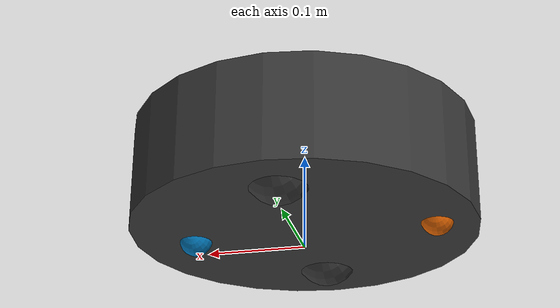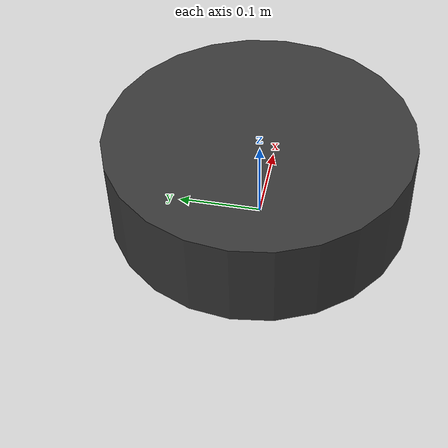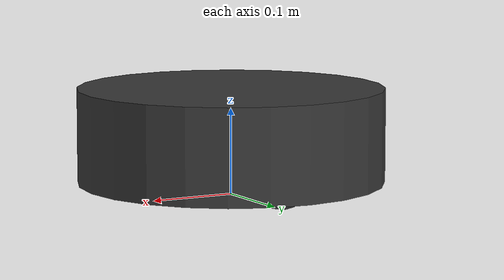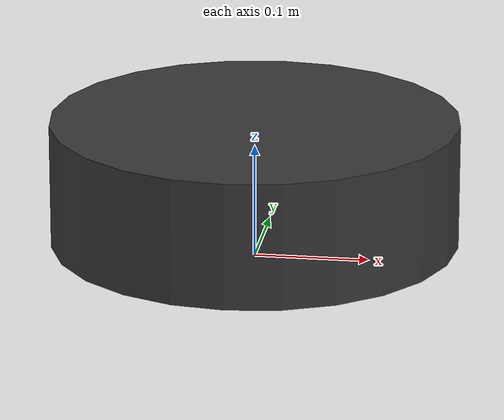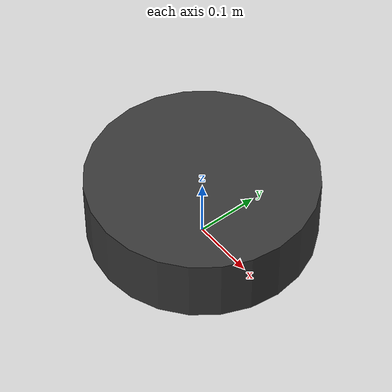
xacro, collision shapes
<?xml version="1.0" ?>

<robot name="kobuki" xmlns:xacro="http://ros.org/wiki/xacro">

  <xacro:arg name="robot_namespace" default="/" />

  <!-- Include Parameters -->
  <xacro:include filename="$(find kobuki_pkg)/urdf/kobuki_parameters.urdf.xacro"/>

  <!-- Kobuki Model-->

  <link name="base_footprint"/>

  <joint name="base_joint" type="fixed">
    <origin xyz="0 0 0.0102" rpy="0 0 0" />
    <parent link="base_footprint"/>
    <child link="base_link" />
  </joint>

  <!-- Base Link -->

  <link_base_kobuki
    name="base_link"
    visual_rpy="0 0 0"
    visual_xyz="0.001 0 0.05199"
    inertial_rpy="0 0 0"
    inertial_xyz="0.01 0 0"
    collision_rpy="0 0 0"
    collision_xyz="0.0 0 0.05949"
    cylinder_length="0.10938"
    cylinder_radius="0.178"
    meshfile="package://kobuki_pkg/meshes/main_body.dae"
    mass="2.4"
    ixx="0.021403" ixy="0.0" ixz="0.0"
    iyy="0.021403" iyz="0.0" izz="0.038020"
  />

  <!-- Left Traction Wheel -->

  <wheel_kobuki
    name="wheel_left"

    joint_origin_xyz="0.00 ${0.23/2} 0.0250"
    joint_origin_rpy="${-M_PI/2} 0 0"
    joint_axis_xyz="0 0 1"

    visual_rpy="0 0 0"
    visual_xyz="0 0 0"
    inertial_rpy="0 0 0"
    inertial_xyz="0 0 0"
    collision_rpy="0 0 0"
    collision_xyz="0 0 0"
    cylinder_length="0.0206"
    cylinder_radius="0.035"
    meshfile="package://kobuki_pkg/meshes/wheel.dae"
    mass="0.01"
    ixx="0.000892" ixy="0.0" ixz="0.0"
    iyy="0.000892" iyz="0.0" izz="0.001584"
  />

  <!-- Right Traction Wheel -->

   <wheel_kobuki
    name="wheel_right"

    joint_origin_xyz="0.00 -${0.23/2} 0.0250"
    joint_origin_rpy="${-M_PI/2} 0 0"
    joint_axis_xyz="0 0 1"

    visual_rpy="0 0 0"
    visual_xyz="0 0 0"
    inertial_rpy="0 0 0"
    inertial_xyz="0 0 0"
    collision_rpy="0 0 0"
    collision_xyz="0 0 0"
    cylinder_length="0.0206"
    cylinder_radius="0.035"
    meshfile="package://kobuki_pkg/meshes/wheel.dae"
    mass="0.01"
    ixx="0.001" ixy="0.0" ixz="0.0"
    iyy="0.001" iyz="0.0" izz="0.001"
  />

  <!-- Front Castor Wheel -->

  <castor_wheel_kobuki
    name="caster_front"

    joint_origin_xyz="0.115 0.0 0.007"
    joint_origin_rpy="${-M_PI/2} 0 0"

    inertial_rpy="0 0 0"
    inertial_xyz="0 0 0"
    collision_rpy="0 0 0"
    collision_xyz="0 0 0"
    cylinder_length="0.0176"
    cylinder_radius="0.017"
    mass="0.01"
    ixx="0.001" ixy="0.0" ixz="0.0"
    iyy="0.001" iyz="0.0" izz="0.001"
  />

  <!-- Back Castor Wheel -->

  <castor_wheel_kobuki
    name="caster_back"

    joint_origin_xyz="-0.135 0.0 0.009"
    joint_origin_rpy="${-M_PI/2} 0 0"

    inertial_rpy="0 0 0"
    inertial_xyz="0 0 0"
    collision_rpy="0 0 0"
    collision_xyz="0 0 0"
    cylinder_length="0.0176"
    cylinder_radius="0.017"
    mass="0.01"
    ixx="0.001" ixy="0.0" ixz="0.0"
    iyy="0.001" iyz="0.0" izz="0.001"
  />

  <!-- Gazebo Plugins -->
  <gazebo>
    <plugin name="gazebo_ros_control" filename="libgazebo_ros_control.so">
      <robotNamespace>$(arg robot_namespace)</robotNamespace>
      <legacyModeNS>true</legacyModeNS>
    </plugin>
  </gazebo>

</robot>

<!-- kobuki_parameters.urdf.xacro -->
<robot name="kobuki_parameters" xmlns:xacro="http://ros.org/wiki/xacro">

    <xacro:property name="M_PI" value="3.1415926535897931" />

    <material name="Black">
        <color rgba="0.22 0.22 0.22 1.0"/>
    </material>

    <!-- Base Link Macro -->
    <xacro:macro
    name="link_base_kobuki"
    params="name visual_rpy visual_xyz inertial_xyz inertial_rpy
            collision_xyz collision_rpy meshfile
            mass ixx ixy ixz iyy iyz izz cylinder_length cylinder_radius">

        <link name="${name}">
            <visual>
                <origin rpy="${visual_rpy}" xyz="${visual_xyz}" />
                <geometry>
                    <mesh filename="${meshfile}"/>
                </geometry>
                <material name="Black"/>
            </visual>

            <inertial>
                <mass value="${mass}" />
                <origin rpy="${inertial_rpy}" xyz="${inertial_xyz}" />
                <inertia ixx="${ixx}" ixy="${ixy}" ixz="${ixz}" iyy="${iyy}" iyz="${iyz}" izz="${izz}" />
            </inertial>

            <collision>
                <origin rpy="${collision_rpy}" xyz="${collision_xyz}" />
                <geometry>
                    <cylinder length="${cylinder_length}" radius="${cylinder_radius}"/>
                </geometry>
            </collision>
        </link>
    </xacro:macro>

    <!-- Traction Wheels Link Macro -->
    <xacro:macro
    name="wheel_kobuki"
    params="name
            joint_origin_xyz joint_origin_rpy joint_axis_xyz
            visual_rpy visual_xyz inertial_xyz inertial_rpy
            collision_xyz collision_rpy meshfile
            mass ixx ixy ixz iyy iyz izz cylinder_length cylinder_radius">

        <joint name="${name}_joint" type="continuous">
            <parent link="base_link"/>
            <child link="${name}_link"/>
            <origin xyz="${joint_origin_xyz}" rpy="${joint_origin_rpy}"/>
            <axis xyz="${joint_axis_xyz}"/>
        </joint>

        <link name="${name}_link">
            <visual>
                <origin rpy="${visual_rpy}" xyz="${visual_xyz}" />
                <geometry>
                    <mesh filename="${meshfile}"/>
                </geometry>
                <material name="Black"/>
            </visual>

            <inertial>
                <mass value="${mass}" />
                <origin rpy="${inertial_rpy}" xyz="${inertial_xyz}" />
                <inertia ixx="${ixx}" ixy="${ixy}" ixz="${ixz}" iyy="${iyy}" iyz="${iyz}" izz="${izz}" />
            </inertial>

            <collision>
                <origin rpy="${collision_rpy}" xyz="${collision_xyz}" />
                <geometry>
                    <sphere radius="${cylinder_radius}"/>
                </geometry>
            </collision>
        </link>

        <!-- Friction values -->
        <!-- Cambiar valores de mu1, mu2, fdir1 -->
        <gazebo reference="${name}_link">
			<mu1>0.01</mu1>
            <mu2>1</mu2>
            <fdir1>0 0 1</fdir1>
		</gazebo>

		<transmission name="${name}_tranmission">
            <type>transmission_interface/SimpleTransmission</type>
            <joint name="${name}_joint">
                <hardwareInterface>hardware_interface/VelocityJointInterface</hardwareInterface>
            </joint>
            <actuator name="${name}_actuator">
                <mechanicalReduction>1</mechanicalReduction>
            </actuator>
         </transmission>
    </xacro:macro>

    <!-- Castor Wheels Link Macro -->
    <xacro:macro
    name="castor_wheel_kobuki"
    params="name
            joint_origin_xyz joint_origin_rpy
            inertial_xyz inertial_rpy collision_xyz collision_rpy
            mass ixx ixy ixz iyy iyz izz cylinder_length cylinder_radius">

        <joint name="${name}_joint" type="fixed">
            <parent link="base_link"/>
            <child link="${name}_link"/>
            <origin xyz="${joint_origin_xyz}" rpy="${joint_origin_rpy}"/>
        </joint>

        <link name="${name}_link">
            <inertial>
                <mass value="${mass}" />
                <origin rpy="${inertial_rpy}" xyz="${inertial_xyz}" />
                <inertia ixx="${ixx}" ixy="${ixy}" ixz="${ixz}" iyy="${iyy}" iyz="${iyz}" izz="${izz}" />
            </inertial>

            <collision>
                <origin rpy="${collision_rpy}" xyz="${collision_xyz}" />
                <geometry>
                    <sphere radius="${cylinder_radius}"/>
                </geometry>
            </collision>

        </link>
    </xacro:macro>

</robot>
